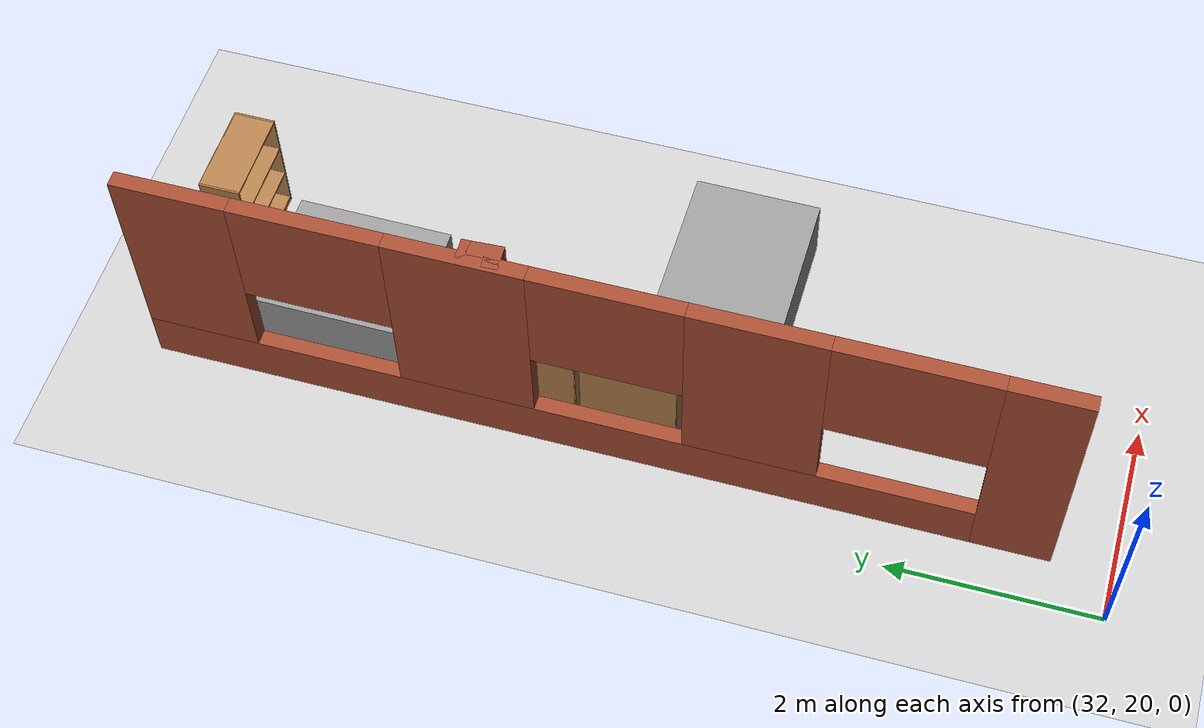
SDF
<sdf version="1.6">
 <world name="default">
  <model name="ground_plane">
   <static>1</static>
   <link name="link">
    <collision name="collision">
     <geometry><plane><normal>0 0 1</normal><size>100 100</size></plane></geometry>
     <surface><friction><ode><mu>100</mu><mu2>50</mu2></ode></friction></surface>
    </collision>
    <visual name="visual">
     <cast_shadows>0</cast_shadows>
     <geometry><plane><normal>0 0 1</normal><size>100 100</size></plane></geometry>
     <material>
      <script><uri>file://media/materials/scripts/gazebo.material</uri><name>Gazebo/Grey</name></script>
     </material>
    </visual>
   </link>
  </model>
  <model name="CVSSP">
   <pose>23.8714 24.094 0 0 -0 0</pose>
   <link name="Wall_815">
    <collision name="Wall_815_Collision">
     <geometry><box><size>0.199149 0.15 2.5</size></box></geometry>
     <pose>0 0 1.25 0 -0 0</pose>
    </collision>
    <visual name="Wall_815_Visual">
     <pose>0 0 1.25 0 -0 0</pose>
     <geometry><box><size>0.199149 0.15 2.5</size></box></geometry>
     <material>
      <script><uri>file://media/materials/scripts/gazebo.material</uri><name>Gazebo/Bricks</name></script>
      <ambient>1 1 1 1</ambient>
     </material>
    </visual>
    <pose>8.74892 1.83972 0 0 -0 0</pose>
   </link>
   <link name="Wall_816">
    <collision name="Wall_816_Collision">
     <geometry><box><size>0.384892 0.15 2.5</size></box></geometry>
     <pose>0 0 1.25 0 -0 0</pose>
    </collision>
    <visual name="Wall_816_Visual">
     <pose>0 0 1.25 0 -0 0</pose>
     <geometry><box><size>0.384892 0.15 2.5</size></box></geometry>
     <material>
      <script><uri>file://media/materials/scripts/gazebo.material</uri><name>Gazebo/Bricks</name></script>
      <ambient>1 1 1 1</ambient>
     </material>
    </visual>
    <pose>8.77916 1.72252 0 0 0 -1.52245</pose>
   </link>
   <link name="Wall_817">
    <collision name="Wall_817_Collision">
     <geometry><box><size>0.24482 0.15 2.5</size></box></geometry>
     <pose>0 0 1.25 0 -0 0</pose>
    </collision>
    <visual name="Wall_817_Visual">
     <pose>0 0 1.25 0 -0 0</pose>
     <geometry><box><size>0.24482 0.15 2.5</size></box></geometry>
     <material>
      <script><uri>file://media/materials/scripts/gazebo.material</uri><name>Gazebo/Bricks</name></script>
      <ambient>1 1 1 1</ambient>
     </material>
    </visual>
    <pose>8.73757 1.60343 0 0 0 -3.10161</pose>
   </link>
   <link name="Wall_94">
    <pose>8.65296 0.7494 0 0 -0 1.57076</pose>
    <visual name="Wall_94_Visual_0">
     <pose>-3.90893 0 1.25 0 -0 0</pose>
     <geometry><box><size>0.743346 0.15 2.5</size></box></geometry>
     <material>
      <script><uri>file://media/materials/scripts/gazebo.material</uri><name>Gazebo/Bricks</name></script>
      <ambient>1 1 1 1</ambient>
     </material>
    </visual>
    <collision name="Wall_94_Collision_0">
     <geometry><box><size>0.743346 0.15 2.5</size></box></geometry>
     <pose>-3.90893 0 1.25 0 -0 0</pose>
    </collision>
    <visual name="Wall_94_Visual_1">
     <pose>0.371673 0 0.25 0 -0 0</pose>
     <geometry><box><size>7.81786 0.15 0.5</size></box></geometry>
     <material>
      <script><uri>file://media/materials/scripts/gazebo.material</uri><name>Gazebo/Bricks</name></script>
      <ambient>1 1 1 1</ambient>
     </material>
    </visual>
    <collision name="Wall_94_Collision_1">
     <geometry><box><size>7.81786 0.15 0.5</size></box></geometry>
     <pose>0.371673 0 0.25 0 -0 0</pose>
    </collision>
    <visual name="Wall_94_Visual_2">
     <pose>-1.47202 0 1.5 0 -0 0</pose>
     <geometry><box><size>1.24189 0.15 2</size></box></geometry>
     <material>
      <script><uri>file://media/materials/scripts/gazebo.material</uri><name>Gazebo/Bricks</name></script>
      <ambient>1 1 1 1</ambient>
     </material>
    </visual>
    <collision name="Wall_94_Collision_2">
     <geometry><box><size>1.24189 0.15 2</size></box></geometry>
     <pose>-1.47202 0 1.5 0 -0 0</pose>
    </collision>
    <visual name="Wall_94_Visual_3">
     <pose>1.1745 0 1.5 0 -0 0</pose>
     <geometry><box><size>1.28154 0.15 2</size></box></geometry>
     <material>
      <script><uri>file://media/materials/scripts/gazebo.material</uri><name>Gazebo/Bricks</name></script>
      <ambient>1 1 1 1</ambient>
     </material>
    </visual>
    <collision name="Wall_94_Collision_3">
     <geometry><box><size>1.28154 0.15 2</size></box></geometry>
     <pose>1.1745 0 1.5 0 -0 0</pose>
    </collision>
    <visual name="Wall_94_Visual_4">
     <pose>3.7453 0 1.5 0 -0 0</pose>
     <geometry><box><size>1.0706 0.15 2</size></box></geometry>
     <material>
      <script><uri>file://media/materials/scripts/gazebo.material</uri><name>Gazebo/Bricks</name></script>
      <ambient>1 1 1 1</ambient>
     </material>
    </visual>
    <collision name="Wall_94_Collision_4">
     <geometry><box><size>1.0706 0.15 2</size></box></geometry>
     <pose>3.7453 0 1.5 0 -0 0</pose>
    </collision>
    <visual name="Wall_94_Visual_5">
     <pose>-2.81511 0 1.9 0 -0 0</pose>
     <geometry><box><size>1.44429 0.15 1.2</size></box></geometry>
     <material>
      <script><uri>file://media/materials/scripts/gazebo.material</uri><name>Gazebo/Bricks</name></script>
      <ambient>1 1 1 1</ambient>
     </material>
    </visual>
    <collision name="Wall_94_Collision_5">
     <geometry><box><size>1.44429 0.15 1.2</size></box></geometry>
     <pose>-2.81511 0 1.9 0 -0 0</pose>
    </collision>
    <visual name="Wall_94_Visual_6">
     <pose>-0.158672 0 1.9 0 -0 0</pose>
     <geometry><box><size>1.38481 0.15 1.2</size></box></geometry>
     <material>
      <script><uri>file://media/materials/scripts/gazebo.material</uri><name>Gazebo/Bricks</name></script>
      <ambient>1 1 1 1</ambient>
     </material>
    </visual>
    <collision name="Wall_94_Collision_6">
     <geometry><box><size>1.38481 0.15 1.2</size></box></geometry>
     <pose>-0.158672 0 1.9 0 -0 0</pose>
    </collision>
    <visual name="Wall_94_Visual_7">
     <pose>2.51264 0 1.9 0 -0 0</pose>
     <geometry><box><size>1.39473 0.15 1.2</size></box></geometry>
     <material>
      <script><uri>file://media/materials/scripts/gazebo.material</uri><name>Gazebo/Bricks</name></script>
      <ambient>1 1 1 1</ambient>
     </material>
    </visual>
    <collision name="Wall_94_Collision_7">
     <geometry><box><size>1.39473 0.15 1.2</size></box></geometry>
     <pose>2.51264 0 1.9 0 -0 0</pose>
    </collision>
   </link>
   <static>1</static>
  </model>
  <model name="black_door_clone">
   <link name="link">
    <inertial>
     <mass>1</mass>
     <inertia>
      <ixx>0.166667</ixx>
      <ixy>0</ixy>
      <ixz>0</ixz>
      <iyy>0.166667</iyy>
      <iyz>0</iyz>
      <izz>0.166667</izz>
     </inertia>
    </inertial>
    <gravity>0</gravity>
    <visual name="visual">
     <geometry><box><size>0.648213 1.21825 1.51833</size></box></geometry>
     <material>
      <script><name>Gazebo/Grey</name><uri>file://media/materials/scripts/gazebo.material</uri></script>
      <shader type="pixel"><normal_map>__default__</normal_map></shader>
      <ambient>0.01 0.001 0.001 1</ambient>
      <diffuse>0.7 0.7 0.7 1</diffuse>
      <specular>0.01 0.01 0.01 1</specular>
      <emissive>0 0 0 1</emissive>
     </material>
    </visual>
    <collision name="collision">
     <geometry><box><size>0.648213 1.21825 1.51833</size></box></geometry>
     <surface>
      <friction>
       <ode><mu>1</mu><mu2>1</mu2><fdir1>0 0 0</fdir1><slip1>0</slip1><slip2>0</slip2></ode>
       <torsional>
        <coefficient>1</coefficient>
        <patch_radius>0</patch_radius>
        <surface_radius>0</surface_radius>
        <use_patch_radius>1</use_patch_radius>
        <ode><slip>0</slip></ode>
       </torsional>
      </friction>
      <bounce><restitution_coefficient>0</restitution_coefficient><threshold>1e+06</threshold></bounce>
      <contact>
       <collide_without_contact>0</collide_without_contact>
       <collide_without_contact_bitmask>1</collide_without_contact_bitmask>
       <collide_bitmask>1</collide_bitmask>
       <ode>
        <soft_cfm>0</soft_cfm>
        <soft_erp>0.2</soft_erp>
        <kp>1e+13</kp>
        <kd>1</kd>
        <max_vel>0.01</max_vel>
        <min_depth>0</min_depth>
       </ode>
       <bullet>
        <split_impulse>1</split_impulse>
        <split_impulse_penetration_threshold>-0.01</split_impulse_penetration_threshold>
        <soft_cfm>0</soft_cfm>
        <soft_erp>0.2</soft_erp>
        <kp>1e+13</kp>
        <kd>1</kd>
       </bullet>
      </contact>
     </surface>
    </collision>
   </link>
   <static>1</static>
   <pose>34.4719 23.9828 0.397205 -1.69381 -1.56274 1.6836</pose>
  </model>
  <model name="bookshelf_oak_clone">
   <link name="link">
    <inertial><mass>1</mass></inertial>
    <visual name="visual4">
     <pose>0 -0.195 0.03 0 -0 0</pose>
     <geometry><box><size>0.88 0.4 0.06</size></box></geometry>
     <material>
      <script><uri>file://media/materials/scripts/gazebo.material</uri><name>Gazebo/Wood</name></script>
      <shader type="pixel"/>
     </material>
    </visual>
    <visual name="visual3">
     <pose>-0.45 -0.195 0.6 0 -0 0</pose>
     <geometry><box><size>0.02 0.4 1.2</size></box></geometry>
     <material>
      <script><uri>file://media/materials/scripts/gazebo.material</uri><name>Gazebo/Wood</name></script>
      <shader type="pixel"/>
     </material>
    </visual>
    <visual name="visual5">
     <pose>0 -0.195 1.19 0 -0 0</pose>
     <geometry><box><size>0.88 0.4 0.02</size></box></geometry>
     <material>
      <script><uri>file://media/materials/scripts/gazebo.material</uri><name>Gazebo/Wood</name></script>
      <shader type="pixel"/>
     </material>
    </visual>
    <visual name="visual2">
     <pose>0.45 -0.195 0.6 0 -0 0</pose>
     <geometry><box><size>0.02 0.4 1.2</size></box></geometry>
     <material>
      <script><uri>file://media/materials/scripts/gazebo.material</uri><name>Gazebo/Wood</name></script>
      <shader type="pixel"/>
     </material>
    </visual>
    <visual name="visual1">
     <pose>0 0.005 0.6 0 -0 0</pose>
     <geometry><box><size>0.9 0.01 1.2</size></box></geometry>
     <material>
      <script><uri>file://media/materials/scripts/gazebo.material</uri><name>Gazebo/Wood</name></script>
      <shader type="pixel"/>
     </material>
    </visual>
    <visual name="visual6">
     <pose>0 -0.195 0.43 0 -0 0</pose>
     <geometry><box><size>0.88 0.4 0.02</size></box></geometry>
     <material>
      <script><uri>file://media/materials/scripts/gazebo.material</uri><name>Gazebo/Wood</name></script>
      <shader type="pixel"/>
     </material>
    </visual>
    <visual name="visual7">
     <pose>0 -0.195 0.8 0 -0 0</pose>
     <geometry><box><size>0.88 0.4 0.02</size></box></geometry>
     <material>
      <script><uri>file://media/materials/scripts/gazebo.material</uri><name>Gazebo/Wood</name></script>
      <shader type="pixel"/>
     </material>
    </visual>
    <collision name="back">
     <pose>0 0.005 0.6 0 -0 0</pose>
     <geometry><box><size>0.9 0.01 1.2</size></box></geometry>
     <surface>
      <friction>
       <ode><mu>1</mu><mu2>1</mu2><fdir1>0 0 0</fdir1><slip1>0</slip1><slip2>0</slip2></ode>
       <torsional>
        <coefficient>1</coefficient>
        <patch_radius>0</patch_radius>
        <surface_radius>0</surface_radius>
        <use_patch_radius>1</use_patch_radius>
        <ode><slip>0</slip></ode>
       </torsional>
      </friction>
      <bounce><restitution_coefficient>0</restitution_coefficient><threshold>1e+06</threshold></bounce>
      <contact>
       <collide_without_contact>0</collide_without_contact>
       <collide_without_contact_bitmask>1</collide_without_contact_bitmask>
       <collide_bitmask>1</collide_bitmask>
       <ode>
        <soft_cfm>0</soft_cfm>
        <soft_erp>0.2</soft_erp>
        <kp>1e+13</kp>
        <kd>1</kd>
        <max_vel>0.01</max_vel>
        <min_depth>0</min_depth>
       </ode>
       <bullet>
        <split_impulse>1</split_impulse>
        <split_impulse_penetration_threshold>-0.01</split_impulse_penetration_threshold>
        <soft_cfm>0</soft_cfm>
        <soft_erp>0.2</soft_erp>
        <kp>1e+13</kp>
        <kd>1</kd>
       </bullet>
      </contact>
     </surface>
    </collision>
    <collision name="left_side">
     <pose>0.45 -0.195 0.6 0 -0 0</pose>
     <geometry><box><size>0.02 0.4 1.2</size></box></geometry>
     <surface>
      <friction>
       <ode><mu>1</mu><mu2>1</mu2><fdir1>0 0 0</fdir1><slip1>0</slip1><slip2>0</slip2></ode>
       <torsional>
        <coefficient>1</coefficient>
        <patch_radius>0</patch_radius>
        <surface_radius>0</surface_radius>
        <use_patch_radius>1</use_patch_radius>
        <ode><slip>0</slip></ode>
       </torsional>
      </friction>
      <bounce><restitution_coefficient>0</restitution_coefficient><threshold>1e+06</threshold></bounce>
      <contact>
       <collide_without_contact>0</collide_without_contact>
       <collide_without_contact_bitmask>1</collide_without_contact_bitmask>
       <collide_bitmask>1</collide_bitmask>
       <ode>
        <soft_cfm>0</soft_cfm>
        <soft_erp>0.2</soft_erp>
        <kp>1e+13</kp>
        <kd>1</kd>
        <max_vel>0.01</max_vel>
        <min_depth>0</min_depth>
       </ode>
       <bullet>
        <split_impulse>1</split_impulse>
        <split_impulse_penetration_threshold>-0.01</split_impulse_penetration_threshold>
        <soft_cfm>0</soft_cfm>
        <soft_erp>0.2</soft_erp>
        <kp>1e+13</kp>
        <kd>1</kd>
       </bullet>
      </contact>
     </surface>
    </collision>
    <collision name="right_side">
     <pose>-0.45 -0.195 0.6 0 -0 0</pose>
     <geometry><box><size>0.02 0.4 1.2</size></box></geometry>
     <surface>
      <friction>
       <ode><mu>1</mu><mu2>1</mu2><fdir1>0 0 0</fdir1><slip1>0</slip1><slip2>0</slip2></ode>
       <torsional>
        <coefficient>1</coefficient>
        <patch_radius>0</patch_radius>
        <surface_radius>0</surface_radius>
        <use_patch_radius>1</use_patch_radius>
        <ode><slip>0</slip></ode>
       </torsional>
      </friction>
      <bounce><restitution_coefficient>0</restitution_coefficient><threshold>1e+06</threshold></bounce>
      <contact>
       <collide_without_contact>0</collide_without_contact>
       <collide_without_contact_bitmask>1</collide_without_contact_bitmask>
       <collide_bitmask>1</collide_bitmask>
       <ode>
        <soft_cfm>0</soft_cfm>
        <soft_erp>0.2</soft_erp>
        <kp>1e+13</kp>
        <kd>1</kd>
        <max_vel>0.01</max_vel>
        <min_depth>0</min_depth>
       </ode>
       <bullet>
        <split_impulse>1</split_impulse>
        <split_impulse_penetration_threshold>-0.01</split_impulse_penetration_threshold>
        <soft_cfm>0</soft_cfm>
        <soft_erp>0.2</soft_erp>
        <kp>1e+13</kp>
        <kd>1</kd>
       </bullet>
      </contact>
     </surface>
    </collision>
    <collision name="bottom">
     <pose>0 -0.195 0.03 0 -0 0</pose>
     <geometry><box><size>0.88 0.4 0.06</size></box></geometry>
     <surface>
      <friction>
       <ode><mu>1</mu><mu2>1</mu2><fdir1>0 0 0</fdir1><slip1>0</slip1><slip2>0</slip2></ode>
       <torsional>
        <coefficient>1</coefficient>
        <patch_radius>0</patch_radius>
        <surface_radius>0</surface_radius>
        <use_patch_radius>1</use_patch_radius>
        <ode><slip>0</slip></ode>
       </torsional>
      </friction>
      <bounce><restitution_coefficient>0</restitution_coefficient><threshold>1e+06</threshold></bounce>
      <contact>
       <collide_without_contact>0</collide_without_contact>
       <collide_without_contact_bitmask>1</collide_without_contact_bitmask>
       <collide_bitmask>1</collide_bitmask>
       <ode>
        <soft_cfm>0</soft_cfm>
        <soft_erp>0.2</soft_erp>
        <kp>1e+13</kp>
        <kd>1</kd>
        <max_vel>0.01</max_vel>
        <min_depth>0</min_depth>
       </ode>
       <bullet>
        <split_impulse>1</split_impulse>
        <split_impulse_penetration_threshold>-0.01</split_impulse_penetration_threshold>
        <soft_cfm>0</soft_cfm>
        <soft_erp>0.2</soft_erp>
        <kp>1e+13</kp>
        <kd>1</kd>
       </bullet>
      </contact>
     </surface>
    </collision>
    <collision name="top">
     <pose>0 -0.195 1.19 0 -0 0</pose>
     <geometry><box><size>0.88 0.4 0.02</size></box></geometry>
     <surface>
      <friction>
       <ode><mu>1</mu><mu2>1</mu2><fdir1>0 0 0</fdir1><slip1>0</slip1><slip2>0</slip2></ode>
       <torsional>
        <coefficient>1</coefficient>
        <patch_radius>0</patch_radius>
        <surface_radius>0</surface_radius>
        <use_patch_radius>1</use_patch_radius>
        <ode><slip>0</slip></ode>
       </torsional>
      </friction>
      <bounce><restitution_coefficient>0</restitution_coefficient><threshold>1e+06</threshold></bounce>
      <contact>
       <collide_without_contact>0</collide_without_contact>
       <collide_without_contact_bitmask>1</collide_without_contact_bitmask>
       <collide_bitmask>1</collide_bitmask>
       <ode>
        <soft_cfm>0</soft_cfm>
        <soft_erp>0.2</soft_erp>
        <kp>1e+13</kp>
        <kd>1</kd>
        <max_vel>0.01</max_vel>
        <min_depth>0</min_depth>
       </ode>
       <bullet>
        <split_impulse>1</split_impulse>
        <split_impulse_penetration_threshold>-0.01</split_impulse_penetration_threshold>
        <soft_cfm>0</soft_cfm>
        <soft_erp>0.2</soft_erp>
        <kp>1e+13</kp>
        <kd>1</kd>
       </bullet>
      </contact>
     </surface>
    </collision>
    <collision name="low_shelf">
     <pose>0 -0.195 0.43 0 -0 0</pose>
     <geometry><box><size>0.88 0.4 0.02</size></box></geometry>
     <surface>
      <friction>
       <ode><mu>1</mu><mu2>1</mu2><fdir1>0 0 0</fdir1><slip1>0</slip1><slip2>0</slip2></ode>
       <torsional>
        <coefficient>1</coefficient>
        <patch_radius>0</patch_radius>
        <surface_radius>0</surface_radius>
        <use_patch_radius>1</use_patch_radius>
        <ode><slip>0</slip></ode>
       </torsional>
      </friction>
      <bounce><restitution_coefficient>0</restitution_coefficient><threshold>1e+06</threshold></bounce>
      <contact>
       <collide_without_contact>0</collide_without_contact>
       <collide_without_contact_bitmask>1</collide_without_contact_bitmask>
       <collide_bitmask>1</collide_bitmask>
       <ode>
        <soft_cfm>0</soft_cfm>
        <soft_erp>0.2</soft_erp>
        <kp>1e+13</kp>
        <kd>1</kd>
        <max_vel>0.01</max_vel>
        <min_depth>0</min_depth>
       </ode>
       <bullet>
        <split_impulse>1</split_impulse>
        <split_impulse_penetration_threshold>-0.01</split_impulse_penetration_threshold>
        <soft_cfm>0</soft_cfm>
        <soft_erp>0.2</soft_erp>
        <kp>1e+13</kp>
        <kd>1</kd>
       </bullet>
      </contact>
     </surface>
    </collision>
    <collision name="high_shelf">
     <pose>0 -0.195 0.8 0 -0 0</pose>
     <geometry><box><size>0.88 0.4 0.02</size></box></geometry>
     <surface>
      <friction>
       <ode><mu>1</mu><mu2>1</mu2><fdir1>0 0 0</fdir1><slip1>0</slip1><slip2>0</slip2></ode>
       <torsional>
        <coefficient>1</coefficient>
        <patch_radius>0</patch_radius>
        <surface_radius>0</surface_radius>
        <use_patch_radius>1</use_patch_radius>
        <ode><slip>0</slip></ode>
       </torsional>
      </friction>
      <bounce><restitution_coefficient>0</restitution_coefficient><threshold>1e+06</threshold></bounce>
      <contact>
       <collide_without_contact>0</collide_without_contact>
       <collide_without_contact_bitmask>1</collide_without_contact_bitmask>
       <collide_bitmask>1</collide_bitmask>
       <ode>
        <soft_cfm>0</soft_cfm>
        <soft_erp>0.2</soft_erp>
        <kp>1e+13</kp>
        <kd>1</kd>
        <max_vel>0.01</max_vel>
        <min_depth>0</min_depth>
       </ode>
       <bullet>
        <split_impulse>1</split_impulse>
        <split_impulse_penetration_threshold>-0.01</split_impulse_penetration_threshold>
        <soft_cfm>0</soft_cfm>
        <soft_erp>0.2</soft_erp>
        <kp>1e+13</kp>
        <kd>1</kd>
       </bullet>
      </contact>
     </surface>
    </collision>
   </link>
   <static>1</static>
   <pose>34.0183 28.9697 0 0 0 -0.002435</pose>
  </model>
  <model name="bookshelf_ply_wood">
   <link name="link">
    <inertial>
     <mass>1</mass>
     <inertia><ixx>1</ixx><ixy>0</ixy><ixz>0</ixz><iyy>1</iyy><iyz>0</iyz><izz>1</izz></inertia>
    </inertial>
    <gravity>0</gravity>
    <visual name="visual6">
     <pose>0 -0.195 0.43 0 -0 0</pose>
     <geometry><box><size>0.88 0.4 0.02</size></box></geometry>
     <material>
      <script><uri>file://media/materials/scripts/gazebo.material</uri><name>Gazebo/Wood</name></script>
      <shader type="pixel"><normal_map>__default__</normal_map></shader>
      <ambient>1 1 1 1</ambient>
      <diffuse>1 1 1 1</diffuse>
      <specular>0.2 0.2 0.2 1</specular>
      <emissive>0 0 0 1</emissive>
     </material>
    </visual>
    <visual name="visual7">
     <pose>0 -0.195 0.8 0 -0 0</pose>
     <geometry><box><size>0.88 0.4 0.02</size></box></geometry>
     <material>
      <script><uri>file://media/materials/scripts/gazebo.material</uri><name>Gazebo/Wood</name></script>
      <shader type="pixel"><normal_map>__default__</normal_map></shader>
      <ambient>1 1 1 1</ambient>
      <diffuse>1 1 1 1</diffuse>
      <specular>0.2 0.2 0.2 1</specular>
      <emissive>0 0 0 1</emissive>
     </material>
    </visual>
    <visual name="visual2">
     <pose>0.45 -0.195 0.6 0 -0 0</pose>
     <geometry><box><size>0.02 0.4 1.2</size></box></geometry>
     <material>
      <script><uri>file://media/materials/scripts/gazebo.material</uri><name>Gazebo/Wood</name></script>
      <shader type="pixel"><normal_map>__default__</normal_map></shader>
      <ambient>1 1 1 1</ambient>
      <diffuse>1 1 1 1</diffuse>
      <specular>0.2 0.2 0.2 1</specular>
      <emissive>0 0 0 1</emissive>
     </material>
    </visual>
    <visual name="visual4">
     <pose>0 -0.195 0.03 0 -0 0</pose>
     <geometry><box><size>0.88 0.4 0.06</size></box></geometry>
     <material>
      <script><uri>file://media/materials/scripts/gazebo.material</uri><name>Gazebo/Wood</name></script>
      <shader type="pixel"><normal_map>__default__</normal_map></shader>
      <ambient>1 1 1 1</ambient>
      <diffuse>1 1 1 1</diffuse>
      <specular>0.2 0.2 0.2 1</specular>
      <emissive>0 0 0 1</emissive>
     </material>
    </visual>
    <visual name="visual3">
     <pose>-0.45 -0.195 0.6 0 -0 0</pose>
     <geometry><box><size>0.02 0.4 1.2</size></box></geometry>
     <material>
      <script><uri>file://media/materials/scripts/gazebo.material</uri><name>Gazebo/Wood</name></script>
      <shader type="pixel"><normal_map>__default__</normal_map></shader>
      <ambient>1 1 1 1</ambient>
      <diffuse>1 1 1 1</diffuse>
      <specular>0.2 0.2 0.2 1</specular>
      <emissive>0 0 0 1</emissive>
     </material>
    </visual>
    <visual name="visual5">
     <pose>0 -0.195 1.19 0 -0 0</pose>
     <geometry><box><size>0.88 0.4 0.02</size></box></geometry>
     <material>
      <script><uri>file://media/materials/scripts/gazebo.material</uri><name>Gazebo/Wood</name></script>
      <shader type="pixel"><normal_map>__default__</normal_map></shader>
      <ambient>1 1 1 1</ambient>
      <diffuse>1 1 1 1</diffuse>
      <specular>0.2 0.2 0.2 1</specular>
      <emissive>0 0 0 1</emissive>
     </material>
    </visual>
    <visual name="visual1">
     <pose>0 0.005 0.6 0 -0 0</pose>
     <geometry><box><size>0.9 0.01 1.2</size></box></geometry>
     <material>
      <script><uri>file://media/materials/scripts/gazebo.material</uri><name>Gazebo/Wood</name></script>
      <shader type="pixel"><normal_map>__default__</normal_map></shader>
      <ambient>1 1 1 1</ambient>
      <diffuse>1 1 1 1</diffuse>
      <specular>0.2 0.2 0.2 1</specular>
      <emissive>0 0 0 1</emissive>
     </material>
    </visual>
    <collision name="back">
     <pose>0 0.005 0.6 0 -0 0</pose>
     <geometry><box><size>0.9 0.01 1.2</size></box></geometry>
     <surface>
      <friction>
       <ode><mu>1</mu><mu2>1</mu2><fdir1>0 0 0</fdir1><slip1>0</slip1><slip2>0</slip2></ode>
       <torsional>
        <coefficient>1</coefficient>
        <patch_radius>0</patch_radius>
        <surface_radius>0</surface_radius>
        <use_patch_radius>1</use_patch_radius>
        <ode><slip>0</slip></ode>
       </torsional>
      </friction>
      <bounce><restitution_coefficient>0</restitution_coefficient><threshold>1e+06</threshold></bounce>
      <contact>
       <collide_without_contact>0</collide_without_contact>
       <collide_without_contact_bitmask>1</collide_without_contact_bitmask>
       <collide_bitmask>1</collide_bitmask>
       <ode>
        <soft_cfm>0</soft_cfm>
        <soft_erp>0.2</soft_erp>
        <kp>1e+13</kp>
        <kd>1</kd>
        <max_vel>0.01</max_vel>
        <min_depth>0</min_depth>
       </ode>
       <bullet>
        <split_impulse>1</split_impulse>
        <split_impulse_penetration_threshold>-0.01</split_impulse_penetration_threshold>
        <soft_cfm>0</soft_cfm>
        <soft_erp>0.2</soft_erp>
        <kp>1e+13</kp>
        <kd>1</kd>
       </bullet>
      </contact>
     </surface>
    </collision>
    <collision name="left_side">
     <pose>0.45 -0.195 0.6 0 -0 0</pose>
     <geometry><box><size>0.02 0.4 1.2</size></box></geometry>
     <surface>
      <friction>
       <ode><mu>1</mu><mu2>1</mu2><fdir1>0 0 0</fdir1><slip1>0</slip1><slip2>0</slip2></ode>
       <torsional>
        <coefficient>1</coefficient>
        <patch_radius>0</patch_radius>
        <surface_radius>0</surface_radius>
        <use_patch_radius>1</use_patch_radius>
        <ode><slip>0</slip></ode>
       </torsional>
      </friction>
      <bounce><restitution_coefficient>0</restitution_coefficient><threshold>1e+06</threshold></bounce>
      <contact>
       <collide_without_contact>0</collide_without_contact>
       <collide_without_contact_bitmask>1</collide_without_contact_bitmask>
       <collide_bitmask>1</collide_bitmask>
       <ode>
        <soft_cfm>0</soft_cfm>
        <soft_erp>0.2</soft_erp>
        <kp>1e+13</kp>
        <kd>1</kd>
        <max_vel>0.01</max_vel>
        <min_depth>0</min_depth>
       </ode>
       <bullet>
        <split_impulse>1</split_impulse>
        <split_impulse_penetration_threshold>-0.01</split_impulse_penetration_threshold>
        <soft_cfm>0</soft_cfm>
        <soft_erp>0.2</soft_erp>
        <kp>1e+13</kp>
        <kd>1</kd>
       </bullet>
      </contact>
     </surface>
    </collision>
    <collision name="right_side">
     <pose>-0.45 -0.195 0.6 0 -0 0</pose>
     <geometry><box><size>0.02 0.4 1.2</size></box></geometry>
     <surface>
      <friction>
       <ode><mu>1</mu><mu2>1</mu2><fdir1>0 0 0</fdir1><slip1>0</slip1><slip2>0</slip2></ode>
       <torsional>
        <coefficient>1</coefficient>
        <patch_radius>0</patch_radius>
        <surface_radius>0</surface_radius>
        <use_patch_radius>1</use_patch_radius>
        <ode><slip>0</slip></ode>
       </torsional>
      </friction>
      <bounce><restitution_coefficient>0</restitution_coefficient><threshold>1e+06</threshold></bounce>
      <contact>
       <collide_without_contact>0</collide_without_contact>
       <collide_without_contact_bitmask>1</collide_without_contact_bitmask>
       <collide_bitmask>1</collide_bitmask>
       <ode>
        <soft_cfm>0</soft_cfm>
        <soft_erp>0.2</soft_erp>
        <kp>1e+13</kp>
        <kd>1</kd>
        <max_vel>0.01</max_vel>
        <min_depth>0</min_depth>
       </ode>
       <bullet>
        <split_impulse>1</split_impulse>
        <split_impulse_penetration_threshold>-0.01</split_impulse_penetration_threshold>
        <soft_cfm>0</soft_cfm>
        <soft_erp>0.2</soft_erp>
        <kp>1e+13</kp>
        <kd>1</kd>
       </bullet>
      </contact>
     </surface>
    </collision>
    <collision name="bottom">
     <pose>0 -0.195 0.03 0 -0 0</pose>
     <geometry><box><size>0.88 0.4 0.06</size></box></geometry>
     <surface>
      <friction>
       <ode><mu>1</mu><mu2>1</mu2><fdir1>0 0 0</fdir1><slip1>0</slip1><slip2>0</slip2></ode>
       <torsional>
        <coefficient>1</coefficient>
        <patch_radius>0</patch_radius>
        <surface_radius>0</surface_radius>
        <use_patch_radius>1</use_patch_radius>
        <ode><slip>0</slip></ode>
       </torsional>
      </friction>
      <bounce><restitution_coefficient>0</restitution_coefficient><threshold>1e+06</threshold></bounce>
      <contact>
       <collide_without_contact>0</collide_without_contact>
       <collide_without_contact_bitmask>1</collide_without_contact_bitmask>
       <collide_bitmask>1</collide_bitmask>
       <ode>
        <soft_cfm>0</soft_cfm>
        <soft_erp>0.2</soft_erp>
        <kp>1e+13</kp>
        <kd>1</kd>
        <max_vel>0.01</max_vel>
        <min_depth>0</min_depth>
       </ode>
       <bullet>
        <split_impulse>1</split_impulse>
        <split_impulse_penetration_threshold>-0.01</split_impulse_penetration_threshold>
        <soft_cfm>0</soft_cfm>
        <soft_erp>0.2</soft_erp>
        <kp>1e+13</kp>
        <kd>1</kd>
       </bullet>
      </contact>
     </surface>
    </collision>
    <collision name="top">
     <pose>0 -0.195 1.19 0 -0 0</pose>
     <geometry><box><size>0.88 0.4 0.02</size></box></geometry>
     <surface>
      <friction>
       <ode><mu>1</mu><mu2>1</mu2><fdir1>0 0 0</fdir1><slip1>0</slip1><slip2>0</slip2></ode>
       <torsional>
        <coefficient>1</coefficient>
        <patch_radius>0</patch_radius>
        <surface_radius>0</surface_radius>
        <use_patch_radius>1</use_patch_radius>
        <ode><slip>0</slip></ode>
       </torsional>
      </friction>
      <bounce><restitution_coefficient>0</restitution_coefficient><threshold>1e+06</threshold></bounce>
      <contact>
       <collide_without_contact>0</collide_without_contact>
       <collide_without_contact_bitmask>1</collide_without_contact_bitmask>
       <collide_bitmask>1</collide_bitmask>
       <ode>
        <soft_cfm>0</soft_cfm>
        <soft_erp>0.2</soft_erp>
        <kp>1e+13</kp>
        <kd>1</kd>
        <max_vel>0.01</max_vel>
        <min_depth>0</min_depth>
       </ode>
       <bullet>
        <split_impulse>1</split_impulse>
        <split_impulse_penetration_threshold>-0.01</split_impulse_penetration_threshold>
        <soft_cfm>0</soft_cfm>
        <soft_erp>0.2</soft_erp>
        <kp>1e+13</kp>
        <kd>1</kd>
       </bullet>
      </contact>
     </surface>
    </collision>
    <collision name="low_shelf">
     <pose>0 -0.195 0.43 0 -0 0</pose>
     <geometry><box><size>0.88 0.4 0.02</size></box></geometry>
     <surface>
      <friction>
       <ode><mu>1</mu><mu2>1</mu2><fdir1>0 0 0</fdir1><slip1>0</slip1><slip2>0</slip2></ode>
       <torsional>
        <coefficient>1</coefficient>
        <patch_radius>0</patch_radius>
        <surface_radius>0</surface_radius>
        <use_patch_radius>1</use_patch_radius>
        <ode><slip>0</slip></ode>
       </torsional>
      </friction>
      <bounce><restitution_coefficient>0</restitution_coefficient><threshold>1e+06</threshold></bounce>
      <contact>
       <collide_without_contact>0</collide_without_contact>
       <collide_without_contact_bitmask>1</collide_without_contact_bitmask>
       <collide_bitmask>1</collide_bitmask>
       <ode>
        <soft_cfm>0</soft_cfm>
        <soft_erp>0.2</soft_erp>
        <kp>1e+13</kp>
        <kd>1</kd>
        <max_vel>0.01</max_vel>
        <min_depth>0</min_depth>
       </ode>
       <bullet>
        <split_impulse>1</split_impulse>
        <split_impulse_penetration_threshold>-0.01</split_impulse_penetration_threshold>
        <soft_cfm>0</soft_cfm>
        <soft_erp>0.2</soft_erp>
        <kp>1e+13</kp>
        <kd>1</kd>
       </bullet>
      </contact>
     </surface>
    </collision>
    <collision name="high_shelf">
     <pose>0 -0.195 0.8 0 -0 0</pose>
     <geometry><box><size>0.88 0.4 0.02</size></box></geometry>
     <surface>
      <friction>
       <ode><mu>1</mu><mu2>1</mu2><fdir1>0 0 0</fdir1><slip1>0</slip1><slip2>0</slip2></ode>
       <torsional>
        <coefficient>1</coefficient>
        <patch_radius>0</patch_radius>
        <surface_radius>0</surface_radius>
        <use_patch_radius>1</use_patch_radius>
        <ode><slip>0</slip></ode>
       </torsional>
      </friction>
      <bounce><restitution_coefficient>0</restitution_coefficient><threshold>1e+06</threshold></bounce>
      <contact>
       <collide_without_contact>0</collide_without_contact>
       <collide_without_contact_bitmask>1</collide_without_contact_bitmask>
       <collide_bitmask>1</collide_bitmask>
       <ode>
        <soft_cfm>0</soft_cfm>
        <soft_erp>0.2</soft_erp>
        <kp>1e+13</kp>
        <kd>1</kd>
        <max_vel>0.01</max_vel>
        <min_depth>0</min_depth>
       </ode>
       <bullet>
        <split_impulse>1</split_impulse>
        <split_impulse_penetration_threshold>-0.01</split_impulse_penetration_threshold>
        <soft_cfm>0</soft_cfm>
        <soft_erp>0.2</soft_erp>
        <kp>1e+13</kp>
        <kd>1</kd>
       </bullet>
      </contact>
     </surface>
    </collision>
   </link>
   <static>1</static>
   <pose>32.6631 24.551 0 0 -0 1.57592</pose>
  </model>
  <model name="bookshelf_ply_wood_clone">
   <link name="link">
    <inertial>
     <mass>1</mass>
     <inertia><ixx>1</ixx><ixy>0</ixy><ixz>0</ixz><iyy>1</iyy><iyz>0</iyz><izz>1</izz></inertia>
    </inertial>
    <gravity>0</gravity>
    <visual name="visual6">
     <pose>0 -0.195 0.43 0 -0 0</pose>
     <geometry><box><size>0.88 0.4 0.02</size></box></geometry>
     <material>
      <script><uri>file://media/materials/scripts/gazebo.material</uri><name>Gazebo/Wood</name></script>
      <shader type="pixel"><normal_map>__default__</normal_map></shader>
      <ambient>1 1 1 1</ambient>
      <diffuse>1 1 1 1</diffuse>
      <specular>0.2 0.2 0.2 1</specular>
      <emissive>0 0 0 1</emissive>
     </material>
    </visual>
    <visual name="visual7">
     <pose>0 -0.195 0.8 0 -0 0</pose>
     <geometry><box><size>0.88 0.4 0.02</size></box></geometry>
     <material>
      <script><uri>file://media/materials/scripts/gazebo.material</uri><name>Gazebo/Wood</name></script>
      <shader type="pixel"><normal_map>__default__</normal_map></shader>
      <ambient>1 1 1 1</ambient>
      <diffuse>1 1 1 1</diffuse>
      <specular>0.2 0.2 0.2 1</specular>
      <emissive>0 0 0 1</emissive>
     </material>
    </visual>
    <visual name="visual2">
     <pose>0.45 -0.195 0.6 0 -0 0</pose>
     <geometry><box><size>0.02 0.4 1.2</size></box></geometry>
     <material>
      <script><uri>file://media/materials/scripts/gazebo.material</uri><name>Gazebo/Wood</name></script>
      <shader type="pixel"><normal_map>__default__</normal_map></shader>
      <ambient>1 1 1 1</ambient>
      <diffuse>1 1 1 1</diffuse>
      <specular>0.2 0.2 0.2 1</specular>
      <emissive>0 0 0 1</emissive>
     </material>
    </visual>
    <visual name="visual4">
     <pose>0 -0.195 0.03 0 -0 0</pose>
     <geometry><box><size>0.88 0.4 0.06</size></box></geometry>
     <material>
      <script><uri>file://media/materials/scripts/gazebo.material</uri><name>Gazebo/Wood</name></script>
      <shader type="pixel"><normal_map>__default__</normal_map></shader>
      <ambient>1 1 1 1</ambient>
      <diffuse>1 1 1 1</diffuse>
      <specular>0.2 0.2 0.2 1</specular>
      <emissive>0 0 0 1</emissive>
     </material>
    </visual>
    <visual name="visual3">
     <pose>-0.45 -0.195 0.6 0 -0 0</pose>
     <geometry><box><size>0.02 0.4 1.2</size></box></geometry>
     <material>
      <script><uri>file://media/materials/scripts/gazebo.material</uri><name>Gazebo/Wood</name></script>
      <shader type="pixel"><normal_map>__default__</normal_map></shader>
      <ambient>1 1 1 1</ambient>
      <diffuse>1 1 1 1</diffuse>
      <specular>0.2 0.2 0.2 1</specular>
      <emissive>0 0 0 1</emissive>
     </material>
    </visual>
    <visual name="visual5">
     <pose>0 -0.195 1.19 0 -0 0</pose>
     <geometry><box><size>0.88 0.4 0.02</size></box></geometry>
     <material>
      <script><uri>file://media/materials/scripts/gazebo.material</uri><name>Gazebo/Wood</name></script>
      <shader type="pixel"><normal_map>__default__</normal_map></shader>
      <ambient>1 1 1 1</ambient>
      <diffuse>1 1 1 1</diffuse>
      <specular>0.2 0.2 0.2 1</specular>
      <emissive>0 0 0 1</emissive>
     </material>
    </visual>
    <visual name="visual1">
     <pose>0 0.005 0.6 0 -0 0</pose>
     <geometry><box><size>0.9 0.01 1.2</size></box></geometry>
     <material>
      <script><uri>file://media/materials/scripts/gazebo.material</uri><name>Gazebo/Wood</name></script>
      <shader type="pixel"><normal_map>__default__</normal_map></shader>
      <ambient>1 1 1 1</ambient>
      <diffuse>1 1 1 1</diffuse>
      <specular>0.2 0.2 0.2 1</specular>
      <emissive>0 0 0 1</emissive>
     </material>
    </visual>
    <collision name="back">
     <pose>0 0.005 0.6 0 -0 0</pose>
     <geometry><box><size>0.9 0.01 1.2</size></box></geometry>
     <surface>
      <friction>
       <ode><mu>1</mu><mu2>1</mu2><fdir1>0 0 0</fdir1><slip1>0</slip1><slip2>0</slip2></ode>
       <torsional>
        <coefficient>1</coefficient>
        <patch_radius>0</patch_radius>
        <surface_radius>0</surface_radius>
        <use_patch_radius>1</use_patch_radius>
        <ode><slip>0</slip></ode>
       </torsional>
      </friction>
      <bounce><restitution_coefficient>0</restitution_coefficient><threshold>1e+06</threshold></bounce>
      <contact>
       <collide_without_contact>0</collide_without_contact>
       <collide_without_contact_bitmask>1</collide_without_contact_bitmask>
       <collide_bitmask>1</collide_bitmask>
       <ode>
        <soft_cfm>0</soft_cfm>
        <soft_erp>0.2</soft_erp>
        <kp>1e+13</kp>
        <kd>1</kd>
        <max_vel>0.01</max_vel>
        <min_depth>0</min_depth>
       </ode>
       <bullet>
        <split_impulse>1</split_impulse>
        <split_impulse_penetration_threshold>-0.01</split_impulse_penetration_threshold>
        <soft_cfm>0</soft_cfm>
        <soft_erp>0.2</soft_erp>
        <kp>1e+13</kp>
        <kd>1</kd>
       </bullet>
      </contact>
     </surface>
    </collision>
    <collision name="left_side">
     <pose>0.45 -0.195 0.6 0 -0 0</pose>
     <geometry><box><size>0.02 0.4 1.2</size></box></geometry>
     <surface>
      <friction>
       <ode><mu>1</mu><mu2>1</mu2><fdir1>0 0 0</fdir1><slip1>0</slip1><slip2>0</slip2></ode>
       <torsional>
        <coefficient>1</coefficient>
        <patch_radius>0</patch_radius>
        <surface_radius>0</surface_radius>
        <use_patch_radius>1</use_patch_radius>
        <ode><slip>0</slip></ode>
       </torsional>
      </friction>
      <bounce><restitution_coefficient>0</restitution_coefficient><threshold>1e+06</threshold></bounce>
      <contact>
       <collide_without_contact>0</collide_without_contact>
       <collide_without_contact_bitmask>1</collide_without_contact_bitmask>
       <collide_bitmask>1</collide_bitmask>
       <ode>
        <soft_cfm>0</soft_cfm>
        <soft_erp>0.2</soft_erp>
        <kp>1e+13</kp>
        <kd>1</kd>
        <max_vel>0.01</max_vel>
        <min_depth>0</min_depth>
       </ode>
       <bullet>
        <split_impulse>1</split_impulse>
        <split_impulse_penetration_threshold>-0.01</split_impulse_penetration_threshold>
        <soft_cfm>0</soft_cfm>
        <soft_erp>0.2</soft_erp>
        <kp>1e+13</kp>
        <kd>1</kd>
       </bullet>
      </contact>
     </surface>
    </collision>
    <collision name="right_side">
     <pose>-0.45 -0.195 0.6 0 -0 0</pose>
     <geometry><box><size>0.02 0.4 1.2</size></box></geometry>
     <surface>
      <friction>
       <ode><mu>1</mu><mu2>1</mu2><fdir1>0 0 0</fdir1><slip1>0</slip1><slip2>0</slip2></ode>
       <torsional>
        <coefficient>1</coefficient>
        <patch_radius>0</patch_radius>
        <surface_radius>0</surface_radius>
        <use_patch_radius>1</use_patch_radius>
        <ode><slip>0</slip></ode>
       </torsional>
      </friction>
      <bounce><restitution_coefficient>0</restitution_coefficient><threshold>1e+06</threshold></bounce>
      <contact>
       <collide_without_contact>0</collide_without_contact>
       <collide_without_contact_bitmask>1</collide_without_contact_bitmask>
       <collide_bitmask>1</collide_bitmask>
       <ode>
        <soft_cfm>0</soft_cfm>
        <soft_erp>0.2</soft_erp>
        <kp>1e+13</kp>
        <kd>1</kd>
        <max_vel>0.01</max_vel>
        <min_depth>0</min_depth>
       </ode>
       <bullet>
        <split_impulse>1</split_impulse>
        <split_impulse_penetration_threshold>-0.01</split_impulse_penetration_threshold>
        <soft_cfm>0</soft_cfm>
        <soft_erp>0.2</soft_erp>
        <kp>1e+13</kp>
        <kd>1</kd>
       </bullet>
      </contact>
     </surface>
    </collision>
    <collision name="bottom">
     <pose>0 -0.195 0.03 0 -0 0</pose>
     <geometry><box><size>0.88 0.4 0.06</size></box></geometry>
     <surface>
      <friction>
       <ode><mu>1</mu><mu2>1</mu2><fdir1>0 0 0</fdir1><slip1>0</slip1><slip2>0</slip2></ode>
       <torsional>
        <coefficient>1</coefficient>
        <patch_radius>0</patch_radius>
        <surface_radius>0</surface_radius>
        <use_patch_radius>1</use_patch_radius>
        <ode><slip>0</slip></ode>
       </torsional>
      </friction>
      <bounce><restitution_coefficient>0</restitution_coefficient><threshold>1e+06</threshold></bounce>
      <contact>
       <collide_without_contact>0</collide_without_contact>
       <collide_without_contact_bitmask>1</collide_without_contact_bitmask>
       <collide_bitmask>1</collide_bitmask>
       <ode>
        <soft_cfm>0</soft_cfm>
        <soft_erp>0.2</soft_erp>
        <kp>1e+13</kp>
        <kd>1</kd>
        <max_vel>0.01</max_vel>
        <min_depth>0</min_depth>
       </ode>
       <bullet>
        <split_impulse>1</split_impulse>
        <split_impulse_penetration_threshold>-0.01</split_impulse_penetration_threshold>
        <soft_cfm>0</soft_cfm>
        <soft_erp>0.2</soft_erp>
        <kp>1e+13</kp>
        <kd>1</kd>
       </bullet>
      </contact>
     </surface>
    </collision>
    <collision name="top">
     <pose>0 -0.195 1.19 0 -0 0</pose>
     <geometry><box><size>0.88 0.4 0.02</size></box></geometry>
     <surface>
      <friction>
       <ode><mu>1</mu><mu2>1</mu2><fdir1>0 0 0</fdir1><slip1>0</slip1><slip2>0</slip2></ode>
       <torsional>
        <coefficient>1</coefficient>
        <patch_radius>0</patch_radius>
        <surface_radius>0</surface_radius>
        <use_patch_radius>1</use_patch_radius>
        <ode><slip>0</slip></ode>
       </torsional>
      </friction>
      <bounce><restitution_coefficient>0</restitution_coefficient><threshold>1e+06</threshold></bounce>
      <contact>
       <collide_without_contact>0</collide_without_contact>
       <collide_without_contact_bitmask>1</collide_without_contact_bitmask>
       <collide_bitmask>1</collide_bitmask>
       <ode>
        <soft_cfm>0</soft_cfm>
        <soft_erp>0.2</soft_erp>
        <kp>1e+13</kp>
        <kd>1</kd>
        <max_vel>0.01</max_vel>
        <min_depth>0</min_depth>
       </ode>
       <bullet>
        <split_impulse>1</split_impulse>
        <split_impulse_penetration_threshold>-0.01</split_impulse_penetration_threshold>
        <soft_cfm>0</soft_cfm>
        <soft_erp>0.2</soft_erp>
        <kp>1e+13</kp>
        <kd>1</kd>
       </bullet>
      </contact>
     </surface>
    </collision>
    <collision name="low_shelf">
     <pose>0 -0.195 0.43 0 -0 0</pose>
     <geometry><box><size>0.88 0.4 0.02</size></box></geometry>
     <surface>
      <friction>
       <ode><mu>1</mu><mu2>1</mu2><fdir1>0 0 0</fdir1><slip1>0</slip1><slip2>0</slip2></ode>
       <torsional>
        <coefficient>1</coefficient>
        <patch_radius>0</patch_radius>
        <surface_radius>0</surface_radius>
        <use_patch_radius>1</use_patch_radius>
        <ode><slip>0</slip></ode>
       </torsional>
      </friction>
      <bounce><restitution_coefficient>0</restitution_coefficient><threshold>1e+06</threshold></bounce>
      <contact>
       <collide_without_contact>0</collide_without_contact>
       <collide_without_contact_bitmask>1</collide_without_contact_bitmask>
       <collide_bitmask>1</collide_bitmask>
       <ode>
        <soft_cfm>0</soft_cfm>
        <soft_erp>0.2</soft_erp>
        <kp>1e+13</kp>
        <kd>1</kd>
        <max_vel>0.01</max_vel>
        <min_depth>0</min_depth>
       </ode>
       <bullet>
        <split_impulse>1</split_impulse>
        <split_impulse_penetration_threshold>-0.01</split_impulse_penetration_threshold>
        <soft_cfm>0</soft_cfm>
        <soft_erp>0.2</soft_erp>
        <kp>1e+13</kp>
        <kd>1</kd>
       </bullet>
      </contact>
     </surface>
    </collision>
    <collision name="high_shelf">
     <pose>0 -0.195 0.8 0 -0 0</pose>
     <geometry><box><size>0.88 0.4 0.02</size></box></geometry>
     <surface>
      <friction>
       <ode><mu>1</mu><mu2>1</mu2><fdir1>0 0 0</fdir1><slip1>0</slip1><slip2>0</slip2></ode>
       <torsional>
        <coefficient>1</coefficient>
        <patch_radius>0</patch_radius>
        <surface_radius>0</surface_radius>
        <use_patch_radius>1</use_patch_radius>
        <ode><slip>0</slip></ode>
       </torsional>
      </friction>
      <bounce><restitution_coefficient>0</restitution_coefficient><threshold>1e+06</threshold></bounce>
      <contact>
       <collide_without_contact>0</collide_without_contact>
       <collide_without_contact_bitmask>1</collide_without_contact_bitmask>
       <collide_bitmask>1</collide_bitmask>
       <ode>
        <soft_cfm>0</soft_cfm>
        <soft_erp>0.2</soft_erp>
        <kp>1e+13</kp>
        <kd>1</kd>
        <max_vel>0.01</max_vel>
        <min_depth>0</min_depth>
       </ode>
       <bullet>
        <split_impulse>1</split_impulse>
        <split_impulse_penetration_threshold>-0.01</split_impulse_penetration_threshold>
        <soft_cfm>0</soft_cfm>
        <soft_erp>0.2</soft_erp>
        <kp>1e+13</kp>
        <kd>1</kd>
       </bullet>
      </contact>
     </surface>
    </collision>
   </link>
   <static>1</static>
   <pose>32.6312 25.4928 0 0 -0 1.57592</pose>
  </model>
  <model name="black_door_clone_clone_clone_clone">
   <link name="link">
    <inertial>
     <mass>1</mass>
     <inertia>
      <ixx>0.166667</ixx>
      <ixy>0</ixy>
      <ixz>0</ixz>
      <iyy>0.166667</iyy>
      <iyz>0</iyz>
      <izz>0.166667</izz>
     </inertia>
    </inertial>
    <gravity>0</gravity>
    <visual name="visual">
     <geometry><box><size>0.648213 1.21825 1.51833</size></box></geometry>
     <material>
      <script><name>Gazebo/Grey</name><uri>file://media/materials/scripts/gazebo.material</uri></script>
      <shader type="pixel"><normal_map>__default__</normal_map></shader>
      <ambient>0.01 0.001 0.001 1</ambient>
      <diffuse>0.7 0.7 0.7 1</diffuse>
      <specular>0.01 0.01 0.01 1</specular>
      <emissive>0 0 0 1</emissive>
     </material>
    </visual>
    <collision name="collision">
     <geometry><box><size>0.648213 1.21825 1.51833</size></box></geometry>
     <surface>
      <friction>
       <ode><mu>1</mu><mu2>1</mu2><fdir1>0 0 0</fdir1><slip1>0</slip1><slip2>0</slip2></ode>
       <torsional>
        <coefficient>1</coefficient>
        <patch_radius>0</patch_radius>
        <surface_radius>0</surface_radius>
        <use_patch_radius>1</use_patch_radius>
        <ode><slip>0</slip></ode>
       </torsional>
      </friction>
      <bounce><restitution_coefficient>0</restitution_coefficient><threshold>1e+06</threshold></bounce>
      <contact>
       <collide_without_contact>0</collide_without_contact>
       <collide_without_contact_bitmask>1</collide_without_contact_bitmask>
       <collide_bitmask>1</collide_bitmask>
       <ode>
        <soft_cfm>0</soft_cfm>
        <soft_erp>0.2</soft_erp>
        <kp>1e+13</kp>
        <kd>1</kd>
        <max_vel>0.01</max_vel>
        <min_depth>0</min_depth>
       </ode>
       <bullet>
        <split_impulse>1</split_impulse>
        <split_impulse_penetration_threshold>-0.01</split_impulse_penetration_threshold>
        <soft_cfm>0</soft_cfm>
        <soft_erp>0.2</soft_erp>
        <kp>1e+13</kp>
        <kd>1</kd>
       </bullet>
      </contact>
     </surface>
    </collision>
   </link>
   <static>1</static>
   <pose>33.37 27.427 0.396876 -0.124478 -1.56274 1.6836</pose>
  </model>
 </world>
</sdf>
